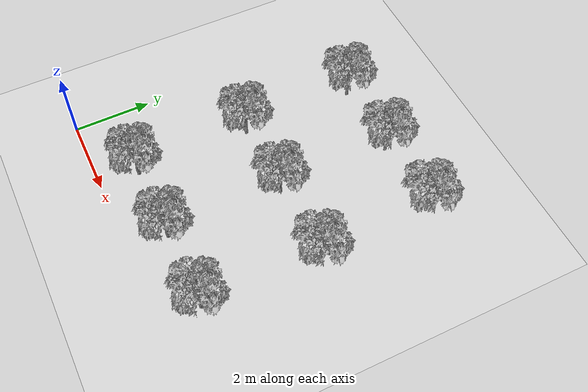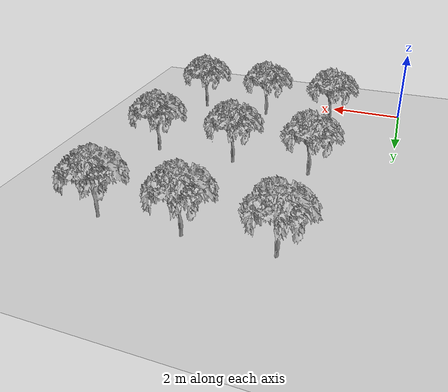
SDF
<sdf version="1.6">
 <world name="default">
  <light name="sun" type="directional">
   <pose>0 0 10 0 -0 0</pose>
   <diffuse>0.8 0.8 0.8 1</diffuse>
   <specular>0.2 0.2 0.2 1</specular>
   <attenuation>
    <range>1000</range>
    <constant>0.9</constant>
    <linear>0.01</linear>
    <quadratic>0.001</quadratic>
   </attenuation>
   <direction>-0.5 0.1 -0.9</direction>
  </light>
  <model name="ground_plane">
   <static>1</static>
   <link name="link">
    <collision name="collision">
     <geometry><plane><normal>0 0 1</normal><size>100 100</size></plane></geometry>
     <surface>
      <contact><collide_bitmask>65535</collide_bitmask></contact>
      <friction><ode><mu>100</mu><mu2>50</mu2></ode></friction>
     </surface>
    </collision>
    <visual name="visual">
     <cast_shadows>0</cast_shadows>
     <geometry><plane><normal>0 0 1</normal><size>100 100</size></plane></geometry>
     <material>
      <script><uri>file://media/materials/scripts/gazebo.material</uri><name>Gazebo/Grey</name></script>
     </material>
    </visual>
   </link>
  </model>
  <gravity>0 0 -9.8</gravity>
  <magnetic_field>6e-06 2.3e-05 -4.2e-05</magnetic_field>
  <atmosphere type="adiabatic"/>
  <physics name="default_physics" default="0" type="ode">
   <max_step_size>0.001</max_step_size>
   <real_time_factor>1</real_time_factor>
   <real_time_update_rate>1000</real_time_update_rate>
  </physics>
  <scene><ambient>0.4 0.4 0.4 1</ambient><background>0.7 0.7 0.7 1</background><shadows>1</shadows></scene>
  <audio><device>default</device></audio>
  <spherical_coordinates>
   <surface_model>EARTH_WGS84</surface_model>
   <latitude_deg>0</latitude_deg>
   <longitude_deg>0</longitude_deg>
   <elevation>0</elevation>
   <heading_deg>0</heading_deg>
  </spherical_coordinates>
  <model name="Tree 2 0.7_0">
   <static>1</static>
   <pose>3.99409 1.00156 0 1.57079 -0 0</pose>
   <link name="link">
    <collision name="collision">
     <geometry><mesh><scale>0.7 0.7 0.7</scale><uri>model://tree_2/meshes/tree_2.obj</uri></mesh></geometry>
    </collision>
    <visual name="visual">
     <geometry><mesh><scale>0.7 0.7 0.7</scale><uri>model://tree_2/meshes/tree_2.obj</uri></mesh></geometry>
    </visual>
   </link>
  </model>
  <model name="Tree 2 0.7_1">
   <static>1</static>
   <pose>6.02264 1.00606 0 1.57079 -0 0</pose>
   <link name="link">
    <collision name="collision">
     <geometry><mesh><scale>0.7 0.7 0.7</scale><uri>model://tree_2/meshes/tree_2.obj</uri></mesh></geometry>
    </collision>
    <visual name="visual">
     <geometry><mesh><scale>0.7 0.7 0.7</scale><uri>model://tree_2/meshes/tree_2.obj</uri></mesh></geometry>
    </visual>
   </link>
  </model>
  <model name="Tree 2 0.7_2">
   <static>1</static>
   <pose>6.12509 4.02684 0 1.57079 -0 0</pose>
   <link name="link">
    <collision name="collision">
     <geometry><mesh><scale>0.7 0.7 0.7</scale><uri>model://tree_2/meshes/tree_2.obj</uri></mesh></geometry>
    </collision>
    <visual name="visual">
     <geometry><mesh><scale>0.7 0.7 0.7</scale><uri>model://tree_2/meshes/tree_2.obj</uri></mesh></geometry>
    </visual>
   </link>
  </model>
  <model name="Tree 2 0.7">
   <static>1</static>
   <pose>1.9918 1.00407 0 1.57079 -0 0</pose>
   <link name="link">
    <collision name="collision">
     <geometry><mesh><scale>0.7 0.7 0.7</scale><uri>model://tree_2/meshes/tree_2.obj</uri></mesh></geometry>
    </collision>
    <visual name="visual">
     <geometry><mesh><scale>0.7 0.7 0.7</scale><uri>model://tree_2/meshes/tree_2.obj</uri></mesh></geometry>
    </visual>
   </link>
  </model>
  <model name="Tree 2 0.7_3">
   <static>1</static>
   <pose>3.99827 4.00619 0 1.57079 -0 0</pose>
   <link name="link">
    <collision name="collision">
     <geometry><mesh><scale>0.7 0.7 0.7</scale><uri>model://tree_2/meshes/tree_2.obj</uri></mesh></geometry>
    </collision>
    <visual name="visual">
     <geometry><mesh><scale>0.7 0.7 0.7</scale><uri>model://tree_2/meshes/tree_2.obj</uri></mesh></geometry>
    </visual>
   </link>
  </model>
  <model name="Tree 2 0.7_4">
   <static>1</static>
   <pose>1.98994 3.99531 0 1.57079 -0 0</pose>
   <link name="link">
    <collision name="collision">
     <geometry><mesh><scale>0.7 0.7 0.7</scale><uri>model://tree_2/meshes/tree_2.obj</uri></mesh></geometry>
    </collision>
    <visual name="visual">
     <geometry><mesh><scale>0.7 0.7 0.7</scale><uri>model://tree_2/meshes/tree_2.obj</uri></mesh></geometry>
    </visual>
   </link>
  </model>
  <model name="Tree 2 0.7_5">
   <static>1</static>
   <pose>1.96741 6.99255 0 1.57079 -0 0</pose>
   <link name="link">
    <collision name="collision">
     <geometry><mesh><scale>0.7 0.7 0.7</scale><uri>model://tree_2/meshes/tree_2.obj</uri></mesh></geometry>
    </collision>
    <visual name="visual">
     <geometry><mesh><scale>0.7 0.7 0.7</scale><uri>model://tree_2/meshes/tree_2.obj</uri></mesh></geometry>
    </visual>
   </link>
  </model>
  <model name="Tree 2 0.7_6">
   <static>1</static>
   <pose>4.00021 7.00847 0 1.57079 -0 0</pose>
   <link name="link">
    <collision name="collision">
     <geometry><mesh><scale>0.7 0.7 0.7</scale><uri>model://tree_2/meshes/tree_2.obj</uri></mesh></geometry>
    </collision>
    <visual name="visual">
     <geometry><mesh><scale>0.7 0.7 0.7</scale><uri>model://tree_2/meshes/tree_2.obj</uri></mesh></geometry>
    </visual>
   </link>
  </model>
  <model name="Tree 2 0.7_7">
   <static>1</static>
   <pose>6.00405 7.00328 0 1.57079 -0 0</pose>
   <link name="link">
    <collision name="collision">
     <geometry><mesh><scale>0.7 0.7 0.7</scale><uri>model://tree_2/meshes/tree_2.obj</uri></mesh></geometry>
    </collision>
    <visual name="visual">
     <geometry><mesh><scale>0.7 0.7 0.7</scale><uri>model://tree_2/meshes/tree_2.obj</uri></mesh></geometry>
    </visual>
   </link>
  </model>
 </world>
</sdf>
